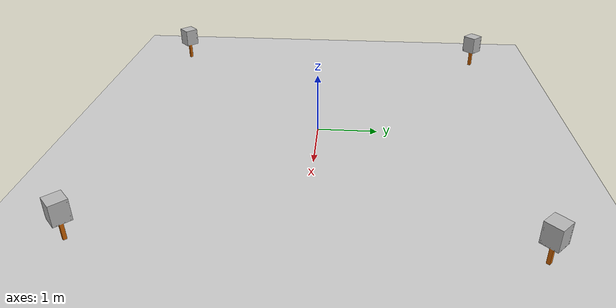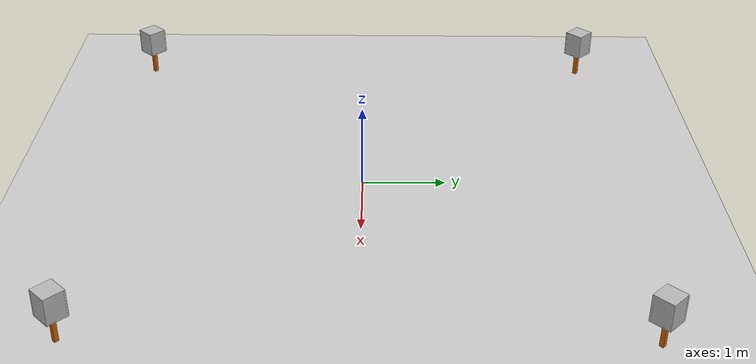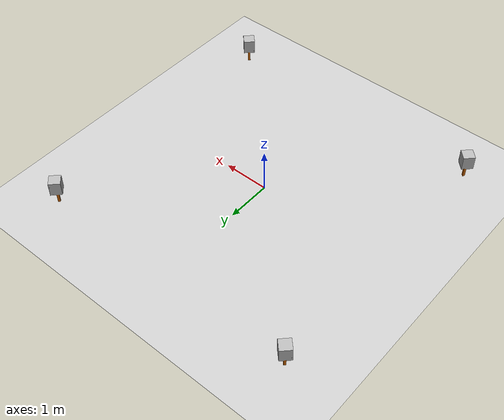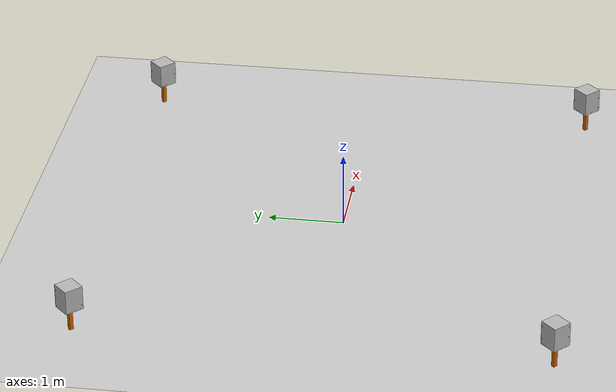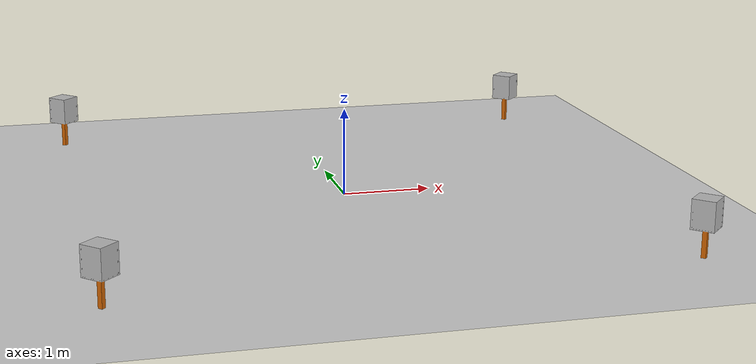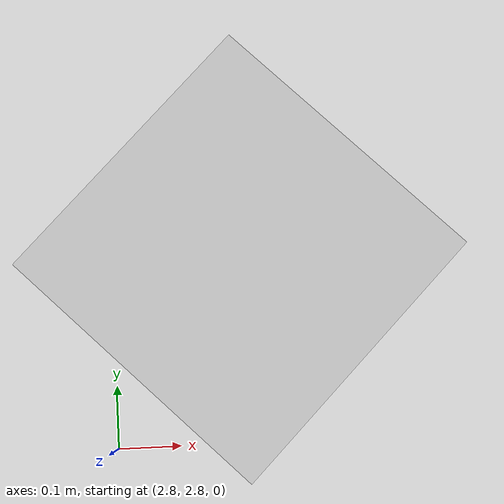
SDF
<?xml version="1.0" ?>
<sdf version="1.9">
  <world name="marker_world">

    <!-- Physics configuration for realistic simulation -->
    <physics name="1ms" type="ode">
      <max_step_size>0.001</max_step_size>
      <real_time_factor>1</real_time_factor>
      <real_time_update_rate>1000</real_time_update_rate>
    </physics>

    <!-- Plugin for ROS 2 integration -->
    <plugin
      filename="gz-sim-physics-system"
      name="gz::sim::systems::Physics">
    </plugin>
    <plugin
      filename="gz-sim-user-commands-system"
      name="gz::sim::systems::UserCommands">
    </plugin>
    <plugin
      filename="gz-sim-scene-broadcaster-system"
      name="gz::sim::systems::SceneBroadcaster">
    </plugin>
    <plugin
      filename="gz-sim-sensors-system"
      name="gz::sim::systems::Sensors">
      <render_engine>ogre2</render_engine>
    </plugin>

    <!-- Sun: Directional light from above -->
    <light type="directional" name="sun">
      <cast_shadows>true</cast_shadows>
      <pose>0 0 10 0 0 0</pose>
      <diffuse>0.8 0.8 0.8 1</diffuse>
      <specular>0.2 0.2 0.2 1</specular>
      <attenuation>
        <range>1000</range>
        <constant>0.9</constant>
        <linear>0.01</linear>
        <quadratic>0.001</quadratic>
      </attenuation>
      <direction>-0.5 0.1 -0.9</direction>
    </light>

    <!-- Ambient lighting for overall scene illumination -->
    <ambient>0.4 0.4 0.4 1</ambient>

    <!-- Ground plane: 20m x 20m with concrete texture -->
    <model name="ground_plane">
      <static>true</static>
      <link name="link">
        <collision name="collision">
          <geometry>
            <plane>
              <normal>0 0 1</normal>
              <size>20 20</size>
            </plane>
          </geometry>
          <surface>
            <friction>
              <ode>
                <mu>100</mu>
                <mu2>50</mu2>
              </ode>
            </friction>
          </surface>
        </collision>
        <visual name="visual">
          <geometry>
            <plane>
              <normal>0 0 1</normal>
              <size>20 20</size>
            </plane>
          </geometry>
          <material>
            <ambient>0.8 0.8 0.8 1</ambient>
            <diffuse>0.8 0.8 0.8 1</diffuse>
            <specular>0.1 0.1 0.1 1</specular>
          </material>
        </visual>
      </link>
    </model>

    <!-- ArUco Marker Pole 51: Front-right position (3, 3, 0) -->
    <include>
      <uri>model://pole51</uri>
      <name>pole51</name>
      <pose>3 3 0 0 0 -2.356</pose> <!-- Rotated to face inward (toward origin) -->
    </include>

    <!-- ArUco Marker Pole 52: Front-left position (3, -3, 0) -->
    <include>
      <uri>model://pole52</uri>
      <name>pole52</name>
      <pose>3 -3 0 0 0 -0.785</pose> <!-- Rotated to face inward (toward origin) -->
    </include>

    <!-- ArUco Marker Pole 53: Back-right position (-3, 3, 0) -->
    <include>
      <uri>model://pole53</uri>
      <name>pole53</name>
      <pose>-3 3 0 0 0 2.356</pose> <!-- Rotated to face inward (toward origin) -->
    </include>

    <!-- ArUco Marker Pole 54: Back-left position (-3, -3, 0) -->
    <include>
      <uri>model://pole54</uri>
      <name>pole54</name>
      <pose>-3 -3 0 0 0 0.785</pose> <!-- Rotated to face inward (toward origin) -->
    </include>

  </world>
</sdf>

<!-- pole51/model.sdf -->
<sdf version="1.6">
    <model name="pole51">
        <static>true</static>
        <pose>0 0 0 0 0 0</pose>
        <link name="link">
            <collision name="collision">
                <geometry>
                    <mesh>
                        <scale>1 1 1</scale>
                        <uri>model://pole51/meshes/pole51.stl</uri>
                    </mesh>
                </geometry>
                <surface>
                    <friction>
                        <ode>
                            <mu>1.2</mu>
                            <mu2>1.2</mu2>
                        </ode>
                    </friction>
                </surface>
            </collision>
            <visual name="visual">
                <geometry>
                    <mesh>
                        <scale>1 1 1</scale>
                        <uri>model://pole51/meshes/pole51.dae</uri>
                    </mesh>
                </geometry>
            </visual>
        </link>
    </model>
</sdf>

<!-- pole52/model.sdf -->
<sdf version="1.6">
    <model name="pole52">
        <static>true</static>
        <link name="link">
            <collision name="collision">
                <geometry>
                    <mesh>
                        <scale>1 1 1</scale>
                        <uri>model://pole52/meshes/pole52.stl</uri>
                    </mesh>
                    <surface>
                        <friction>
                            <ode>
                                <mu>1.2</mu>
                                <mu2>1.2</mu2>
                            </ode>
                        </friction>
                    </surface>
                </geometry>
            </collision>
            <visual name="visual">
                <geometry>
                    <mesh>
                        <scale>1 1 1</scale>
                        <uri>model://pole52/meshes/pole52.dae</uri>
                    </mesh>
                </geometry>
            </visual>
        </link>
    </model>
</sdf>

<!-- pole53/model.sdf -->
<sdf version="1.6">
    <model name="pole53">
        <static>true</static>
        <link name="link">
            <collision name="collision">
                <geometry>
                    <mesh>
                        <scale>1 1 1</scale>
                        <uri>model://pole53/meshes/pole53.stl</uri>
                    </mesh>
                    <surface>
                        <friction>
                            <ode>
                                <mu>1.2</mu>
                                <mu2>1.2</mu2>
                            </ode>
                        </friction>
                    </surface>
                </geometry>
            </collision>
            <visual name="visual">
                <geometry>
                    <mesh>
                        <scale>1 1 1</scale>
                        <uri>model://pole53/meshes/pole53.dae</uri>
                    </mesh>
                </geometry>
            </visual>
        </link>
    </model>
</sdf>

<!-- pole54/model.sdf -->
<sdf version="1.6">
    <model name="pole54">
        <static>true</static>
        <link name="link">
            <collision name="collision">
                <geometry>
                    <mesh>
                        <scale>1 1 1</scale>
                        <uri>model://pole54/meshes/pole54.stl</uri>
                    </mesh>
                    <surface>
                        <friction>
                            <ode>
                                <mu>1.2</mu>
                                <mu2>1.2</mu2>
                            </ode>
                        </friction>
                    </surface>
                </geometry>
            </collision>
            <visual name="visual">
                <geometry>
                    <mesh>
                        <scale>1 1 1</scale>
                        <uri>model://pole54/meshes/pole54.dae</uri>
                    </mesh>
                </geometry>
            </visual>
        </link>
    </model>
</sdf>
